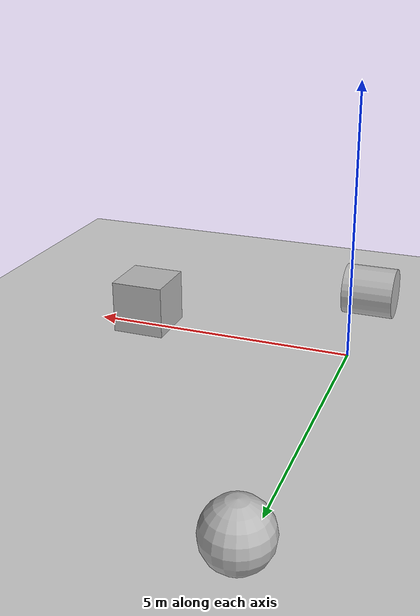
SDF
<?xml version="1.0" ?>
<sdf version="1.4">
  <world name="default">
    <include>
      <uri>model://ground_plane</uri>
    </include>
    <include>
      <uri>model://sun</uri>
    </include>
    <model name="box">
      <pose>4 0 0.5 0 0 0</pose>
      <link name="link">
        <collision name="collision">
          <geometry>
            <box>
              <size>1 1 1</size>
            </box>
          </geometry>
        </collision>
        <visual name="visual">
          <geometry>
            <box>
              <size>1 1 1</size>
            </box>
          </geometry>
          <material>
            <script>Gazebo/WoodPallet</script>
          </material>
        </visual>
      </link>
    </model>
    <model name="sphere">
      <pose>0 6 0.5 0 0 0</pose>
      <link name="link">
        <collision name="collision">
          <geometry>
            <sphere>
              <radius>0.5</radius>
            </sphere>
          </geometry>
        </collision>
        <visual name="visual">
          <geometry>
            <sphere>
              <radius>0.5</radius>
            </sphere>
          </geometry>
          <material>
            <script>Gazebo/WoodPallet</script>
          </material>
        </visual>
      </link>
    </model>
    <model name="cylinder">
      <pose>0 -2 0.5 0 1.5707 0</pose>
      <link name="link">
        <collision name="collision">
          <geometry>
            <cylinder>
              <radius>0.5</radius>
              <length>1.0</length>
            </cylinder>
          </geometry>
        </collision>
        <visual name="visual">
          <geometry>
            <cylinder>
              <radius>0.5</radius>
              <length>1.0</length>
            </cylinder>
          </geometry>
          <material>
            <script>Gazebo/WoodPallet</script>
          </material>
        </visual>
      </link>
    </model>
  </world>
</sdf>
